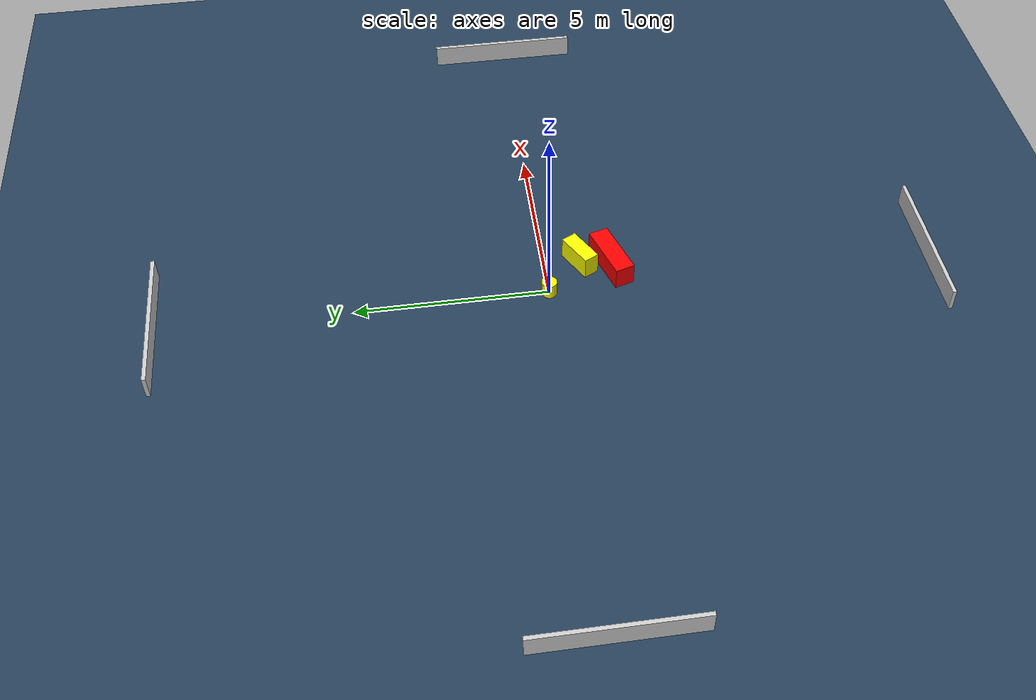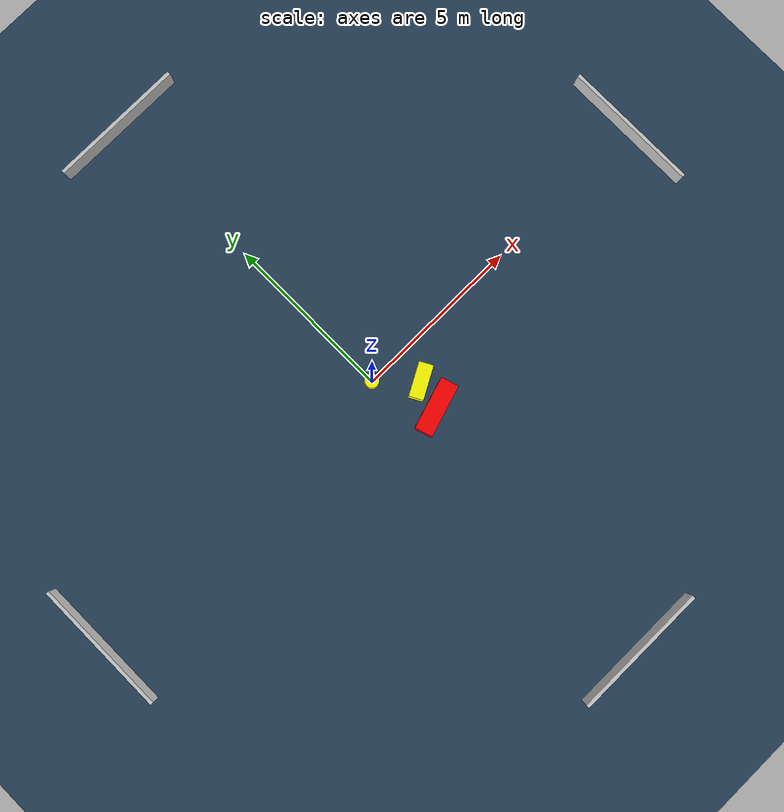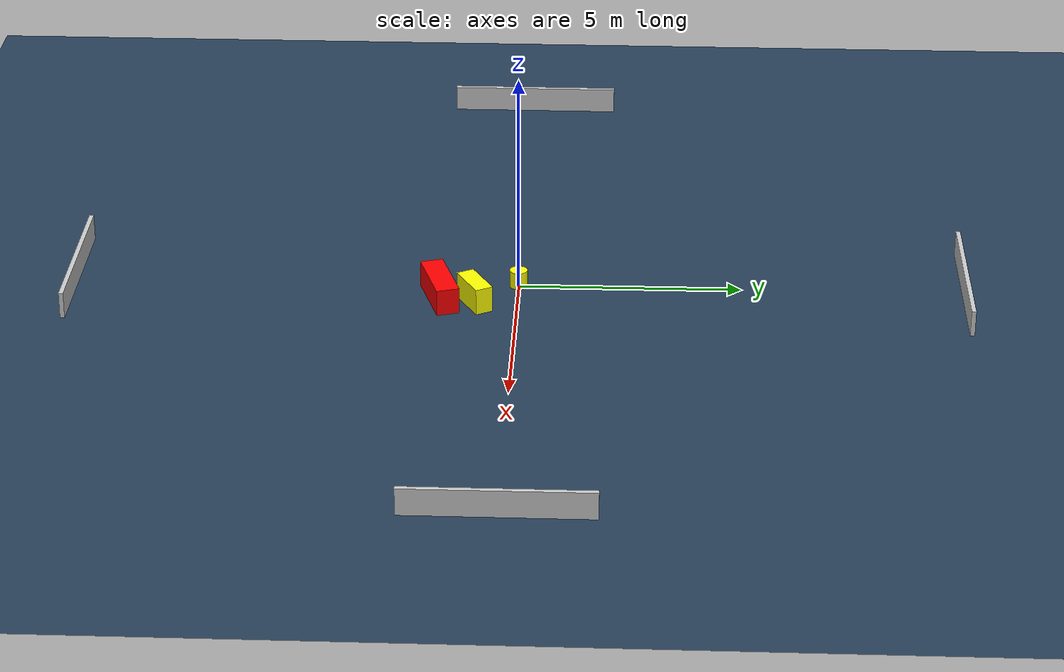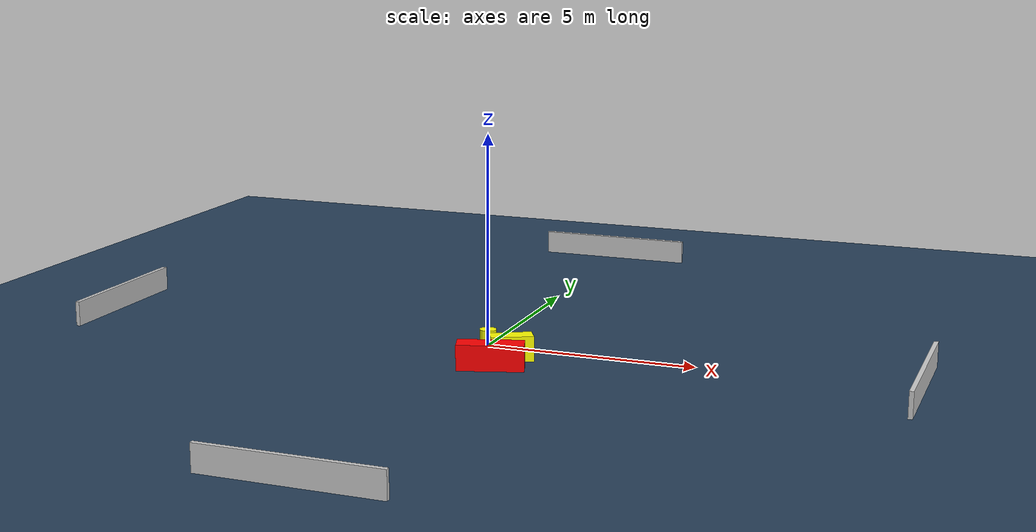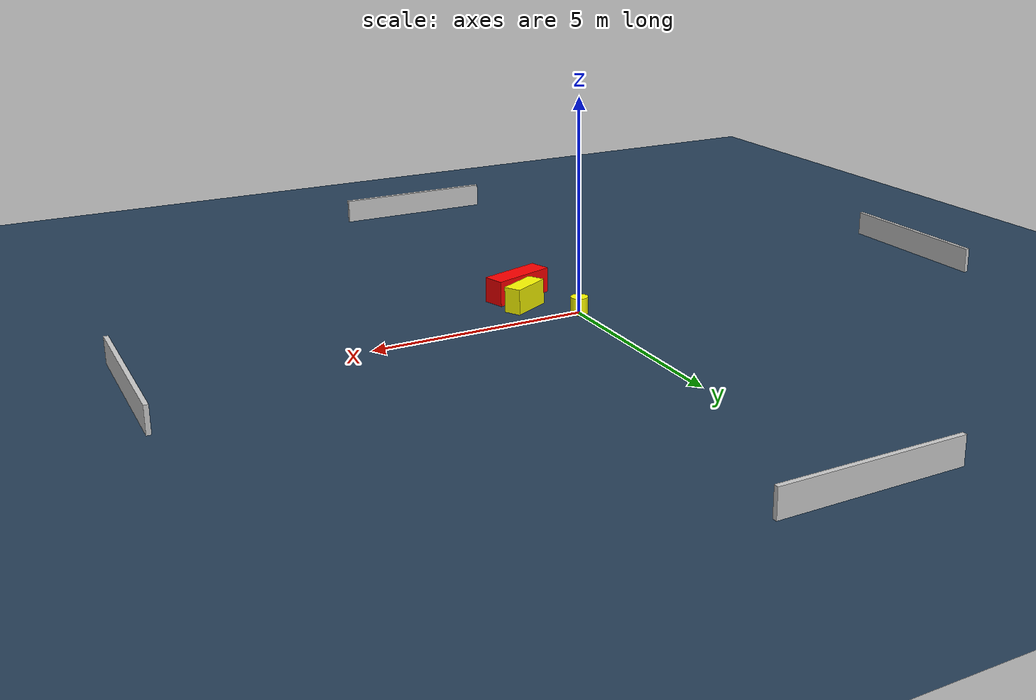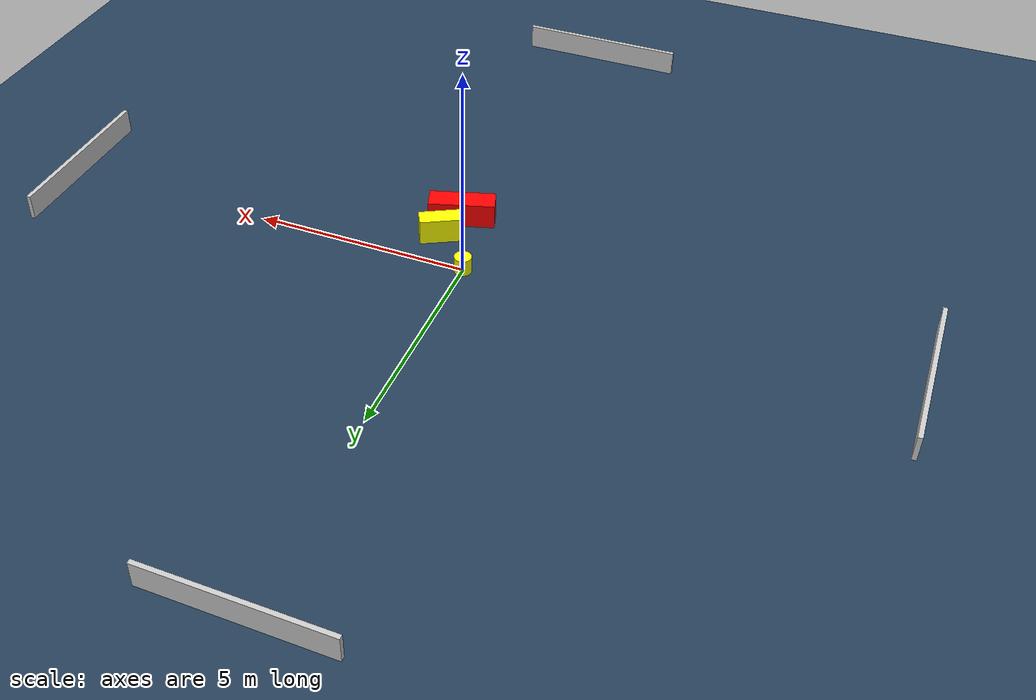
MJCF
<?xml version="1.0" ?>
<mujoco model="generated_environment">
  <option timestep="0.01" integrator="RK4" cone="elliptic"/>
  <default>
    <geom density="1"/>
  </default>
  <asset>
    <texture builtin="gradient" height="3072" name="skybox" rgb1="0.3 0.5 0.7" rgb2="0 0 0" type="skybox" width="512"/>
    <texture builtin="checker" height="300" name="groundplane" rgb1="0.2 0.3 0.4" rgb2="0.1 0.2 0.3" type="2d" width="300"/>
    <material name="groundplane" reflectance="0.2" texrepeat="5 5" texture="groundplane"/>
  </asset>
  <worldbody>
    <light dir="0 0 -1" directional="true" pos="0 0 1.5"/>
    <geom condim="3" friction="0.5 0.005 0.001" material="groundplane" name="floor" pos="0 0 0" size="0 0 0.05" type="plane"/>
    <body name="walls">
      <geom name="wall_1" condim="4" pos="-10.0 0.0 0.3" rgba="0.800000011920929 0.800000011920929 0.800000011920929 1.0" size="0.05 2.0 0.3" type="box"/>
      <geom name="wall_2" condim="4" pos="10.0 0.0 0.3" rgba="0.800000011920929 0.800000011920929 0.800000011920929 1.0" size="0.05 2.0 0.3" type="box"/>
      <geom name="wall_3" condim="4" pos="0.0 -10.0 0.3" rgba="0.800000011920929 0.800000011920929 0.800000011920929 1.0" size="2.0 0.05 0.3" type="box"/>
      <geom name="wall_4" condim="4" pos="0.0 10.0 0.3" rgba="0.800000011920929 0.800000011920929 0.800000011920929 1.0" size="2.0 0.05 0.3" type="box"/>
    </body>
    <body name="robot">
      <joint name="joint_x" type="slide" pos="0 0 0" axis="1 0 0"/>
      <joint name="joint_y" type="slide" pos="0 0 0" axis="0 1 0"/>
      <geom name="robot" type="cylinder" pos="0.0 0.0 0.2" size="0.2 0.2 0.0" mass="5.0" friction="1.0 0.005 0.0001" condim="4" rgba="1.0 1.0 0.0 1.0"/>
    </body>
    <body name="obstacle_1_movable">
      <geom name="obstacle_1_movable" condim="4" pos="0.9310169474836817 -0.9379549435927392 0.3" euler="0 0 208.74160934851565" friction="0.0 0.005 0.001" rgba="1.0 1.0 0.0 1.0" size="0.4917209524403143 0.2061489909714558 0.3" type="box" mass="0.1"/>
      <joint type="free"/>
    </body>
    <body name="obstacle_2_static">
      <geom name="obstacle_2_static" condim="4" pos="0.7296901709016378 -1.729385223238659 0.3" euler="0 0 107.54894300493734" friction="0.0 0.005 0.001" rgba="1.0 0.0 0.0 1.0" size="0.258786910939389 0.7660837242329319 0.3" type="box"/>
    </body>
  </worldbody>
  <actuator>
    <motor name="actuator_x" joint="joint_x" gear="1" ctrlrange="-1 1"/>
    <motor name="actuator_y" joint="joint_y" gear="1" ctrlrange="-1 1"/>
  </actuator>
</mujoco>
